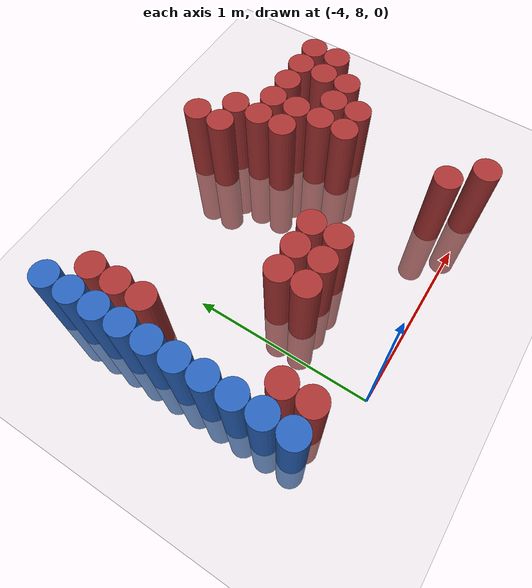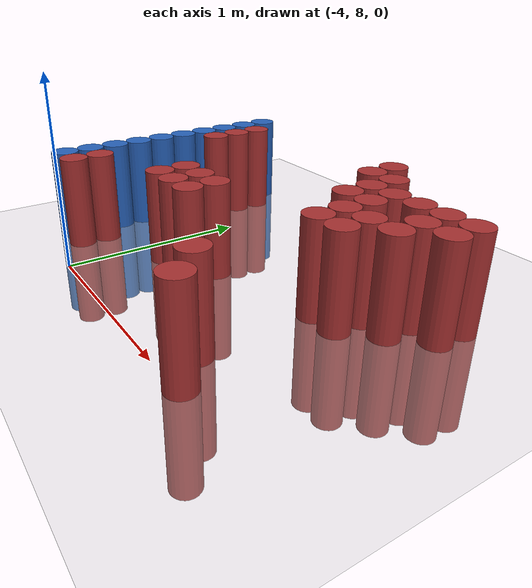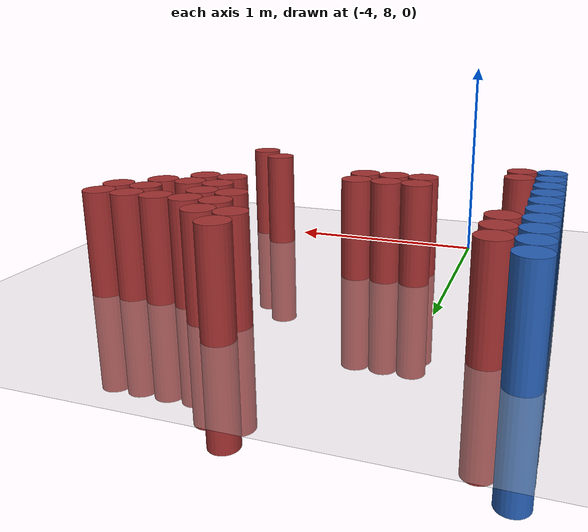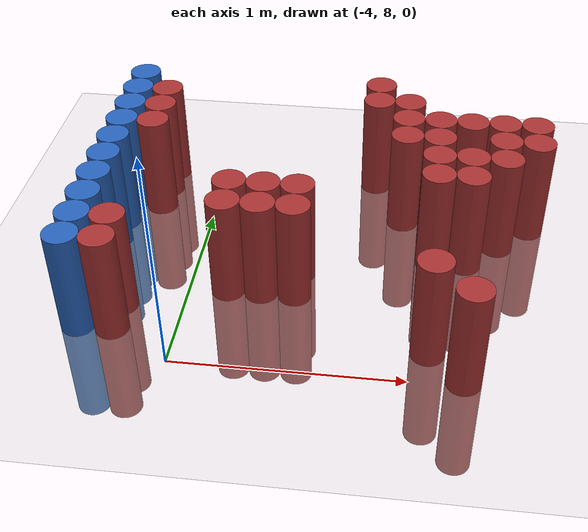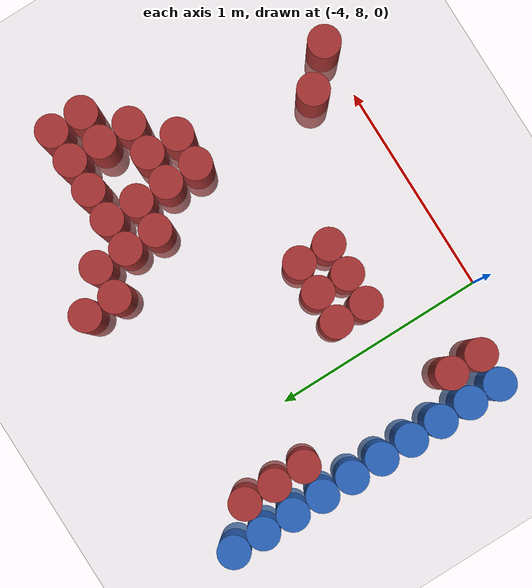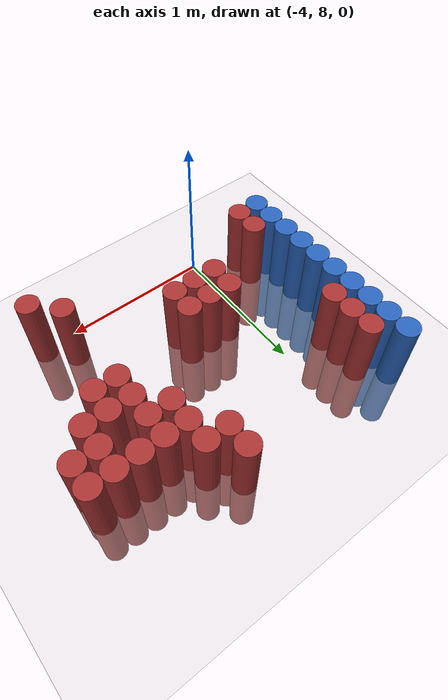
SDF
<sdf version="1.6">
 <world name="default">
  <model name="ground_plane">
   <static>1</static>
   <link name="link">
    <collision name="collision">
     <geometry><plane><normal>0 0 1</normal><size>100 100</size></plane></geometry>
     <surface><friction><ode><mu>100</mu><mu2>50</mu2></ode></friction></surface>
    </collision>
    <visual name="visual">
     <cast_shadows>0</cast_shadows>
     <geometry><plane><normal>0 0 1</normal><size>100 100</size></plane></geometry>
     <material>
      <script><uri>file://media/materials/scripts/gazebo.material</uri><name>Gazebo/Grey</name></script>
     </material>
    </visual>
   </link>
  </model>
  <model name="unit_cylinder_116">
   <static>1</static>
   <pose>-4.425000 8.175000 0.000000 0.000000 0.000000 0.000000</pose>
   <link name="link">
    <inertial>
     <mass>1</mass>
     <inertia><ixx>0.145833</ixx><ixy>0</ixy><ixz>0</ixz><iyy>0.145833</iyy><iyz>0</iyz><izz>0.125</izz></inertia>
    </inertial>
    <collision name="collision">
     <geometry><cylinder><radius>0.075000</radius><length>1</length></cylinder></geometry>
    </collision>
    <visual name="visual">
     <geometry><cylinder><radius>0.075000</radius><length>1</length></cylinder></geometry>
     <material>
      <ambient>0.152000 0.379000 0.720000 1</ambient>
      <diffuse>0.152000 0.379000 0.720000 1</diffuse>
     </material>
     <material>
      <script><name>Gazebo/Grey</name><uri>file://media/materials/scripts/gazebo.material</uri></script>
     </material>
    </visual>
    <sensor name="sensor_contact" type="contact"><contact><collision>collision</collision></contact></sensor>
   </link>
   <plugin filename="gz-sim-touchplugin-system" name="gz::sim::systems::TouchPlugin">
    <target>robot</target>
    <namespace>robot</namespace>
    <time>0.001</time>
    <enabled>true</enabled>
   </plugin>
  </model>
  <model name="unit_cylinder_117">
   <static>1</static>
   <pose>-4.425000 8.325000 0.000000 0.000000 0.000000 0.000000</pose>
   <link name="link">
    <inertial>
     <mass>1</mass>
     <inertia><ixx>0.145833</ixx><ixy>0</ixy><ixz>0</ixz><iyy>0.145833</iyy><iyz>0</iyz><izz>0.125</izz></inertia>
    </inertial>
    <collision name="collision">
     <geometry><cylinder><radius>0.075000</radius><length>1</length></cylinder></geometry>
    </collision>
    <visual name="visual">
     <geometry><cylinder><radius>0.075000</radius><length>1</length></cylinder></geometry>
     <material>
      <ambient>0.152000 0.379000 0.720000 1</ambient>
      <diffuse>0.152000 0.379000 0.720000 1</diffuse>
     </material>
     <material>
      <script><name>Gazebo/Grey</name><uri>file://media/materials/scripts/gazebo.material</uri></script>
     </material>
    </visual>
    <sensor name="sensor_contact" type="contact"><contact><collision>collision</collision></contact></sensor>
   </link>
   <plugin filename="gz-sim-touchplugin-system" name="gz::sim::systems::TouchPlugin">
    <target>robot</target>
    <namespace>robot</namespace>
    <time>0.001</time>
    <enabled>true</enabled>
   </plugin>
  </model>
  <model name="unit_cylinder_118">
   <static>1</static>
   <pose>-4.425000 8.475000 0.000000 0.000000 0.000000 0.000000</pose>
   <link name="link">
    <inertial>
     <mass>1</mass>
     <inertia><ixx>0.145833</ixx><ixy>0</ixy><ixz>0</ixz><iyy>0.145833</iyy><iyz>0</iyz><izz>0.125</izz></inertia>
    </inertial>
    <collision name="collision">
     <geometry><cylinder><radius>0.075000</radius><length>1</length></cylinder></geometry>
    </collision>
    <visual name="visual">
     <geometry><cylinder><radius>0.075000</radius><length>1</length></cylinder></geometry>
     <material>
      <ambient>0.152000 0.379000 0.720000 1</ambient>
      <diffuse>0.152000 0.379000 0.720000 1</diffuse>
     </material>
     <material>
      <script><name>Gazebo/Grey</name><uri>file://media/materials/scripts/gazebo.material</uri></script>
     </material>
    </visual>
    <sensor name="sensor_contact" type="contact"><contact><collision>collision</collision></contact></sensor>
   </link>
   <plugin filename="gz-sim-touchplugin-system" name="gz::sim::systems::TouchPlugin">
    <target>robot</target>
    <namespace>robot</namespace>
    <time>0.001</time>
    <enabled>true</enabled>
   </plugin>
  </model>
  <model name="unit_cylinder_119">
   <static>1</static>
   <pose>-4.425000 8.625000 0.000000 0.000000 0.000000 0.000000</pose>
   <link name="link">
    <inertial>
     <mass>1</mass>
     <inertia><ixx>0.145833</ixx><ixy>0</ixy><ixz>0</ixz><iyy>0.145833</iyy><iyz>0</iyz><izz>0.125</izz></inertia>
    </inertial>
    <collision name="collision">
     <geometry><cylinder><radius>0.075000</radius><length>1</length></cylinder></geometry>
    </collision>
    <visual name="visual">
     <geometry><cylinder><radius>0.075000</radius><length>1</length></cylinder></geometry>
     <material>
      <ambient>0.152000 0.379000 0.720000 1</ambient>
      <diffuse>0.152000 0.379000 0.720000 1</diffuse>
     </material>
     <material>
      <script><name>Gazebo/Grey</name><uri>file://media/materials/scripts/gazebo.material</uri></script>
     </material>
    </visual>
    <sensor name="sensor_contact" type="contact"><contact><collision>collision</collision></contact></sensor>
   </link>
   <plugin filename="gz-sim-touchplugin-system" name="gz::sim::systems::TouchPlugin">
    <target>robot</target>
    <namespace>robot</namespace>
    <time>0.001</time>
    <enabled>true</enabled>
   </plugin>
  </model>
  <model name="unit_cylinder_120">
   <static>1</static>
   <pose>-4.425000 8.775000 0.000000 0.000000 0.000000 0.000000</pose>
   <link name="link">
    <inertial>
     <mass>1</mass>
     <inertia><ixx>0.145833</ixx><ixy>0</ixy><ixz>0</ixz><iyy>0.145833</iyy><iyz>0</iyz><izz>0.125</izz></inertia>
    </inertial>
    <collision name="collision">
     <geometry><cylinder><radius>0.075000</radius><length>1</length></cylinder></geometry>
    </collision>
    <visual name="visual">
     <geometry><cylinder><radius>0.075000</radius><length>1</length></cylinder></geometry>
     <material>
      <ambient>0.152000 0.379000 0.720000 1</ambient>
      <diffuse>0.152000 0.379000 0.720000 1</diffuse>
     </material>
     <material>
      <script><name>Gazebo/Grey</name><uri>file://media/materials/scripts/gazebo.material</uri></script>
     </material>
    </visual>
    <sensor name="sensor_contact" type="contact"><contact><collision>collision</collision></contact></sensor>
   </link>
   <plugin filename="gz-sim-touchplugin-system" name="gz::sim::systems::TouchPlugin">
    <target>robot</target>
    <namespace>robot</namespace>
    <time>0.001</time>
    <enabled>true</enabled>
   </plugin>
  </model>
  <model name="unit_cylinder_121">
   <static>1</static>
   <pose>-4.425000 8.925000 0.000000 0.000000 0.000000 0.000000</pose>
   <link name="link">
    <inertial>
     <mass>1</mass>
     <inertia><ixx>0.145833</ixx><ixy>0</ixy><ixz>0</ixz><iyy>0.145833</iyy><iyz>0</iyz><izz>0.125</izz></inertia>
    </inertial>
    <collision name="collision">
     <geometry><cylinder><radius>0.075000</radius><length>1</length></cylinder></geometry>
    </collision>
    <visual name="visual">
     <geometry><cylinder><radius>0.075000</radius><length>1</length></cylinder></geometry>
     <material>
      <ambient>0.152000 0.379000 0.720000 1</ambient>
      <diffuse>0.152000 0.379000 0.720000 1</diffuse>
     </material>
     <material>
      <script><name>Gazebo/Grey</name><uri>file://media/materials/scripts/gazebo.material</uri></script>
     </material>
    </visual>
    <sensor name="sensor_contact" type="contact"><contact><collision>collision</collision></contact></sensor>
   </link>
   <plugin filename="gz-sim-touchplugin-system" name="gz::sim::systems::TouchPlugin">
    <target>robot</target>
    <namespace>robot</namespace>
    <time>0.001</time>
    <enabled>true</enabled>
   </plugin>
  </model>
  <model name="unit_cylinder_122">
   <static>1</static>
   <pose>-4.425000 9.075000 0.000000 0.000000 0.000000 0.000000</pose>
   <link name="link">
    <inertial>
     <mass>1</mass>
     <inertia><ixx>0.145833</ixx><ixy>0</ixy><ixz>0</ixz><iyy>0.145833</iyy><iyz>0</iyz><izz>0.125</izz></inertia>
    </inertial>
    <collision name="collision">
     <geometry><cylinder><radius>0.075000</radius><length>1</length></cylinder></geometry>
    </collision>
    <visual name="visual">
     <geometry><cylinder><radius>0.075000</radius><length>1</length></cylinder></geometry>
     <material>
      <ambient>0.152000 0.379000 0.720000 1</ambient>
      <diffuse>0.152000 0.379000 0.720000 1</diffuse>
     </material>
     <material>
      <script><name>Gazebo/Grey</name><uri>file://media/materials/scripts/gazebo.material</uri></script>
     </material>
    </visual>
    <sensor name="sensor_contact" type="contact"><contact><collision>collision</collision></contact></sensor>
   </link>
   <plugin filename="gz-sim-touchplugin-system" name="gz::sim::systems::TouchPlugin">
    <target>robot</target>
    <namespace>robot</namespace>
    <time>0.001</time>
    <enabled>true</enabled>
   </plugin>
  </model>
  <model name="unit_cylinder_123">
   <static>1</static>
   <pose>-4.425000 9.225000 0.000000 0.000000 0.000000 0.000000</pose>
   <link name="link">
    <inertial>
     <mass>1</mass>
     <inertia><ixx>0.145833</ixx><ixy>0</ixy><ixz>0</ixz><iyy>0.145833</iyy><iyz>0</iyz><izz>0.125</izz></inertia>
    </inertial>
    <collision name="collision">
     <geometry><cylinder><radius>0.075000</radius><length>1</length></cylinder></geometry>
    </collision>
    <visual name="visual">
     <geometry><cylinder><radius>0.075000</radius><length>1</length></cylinder></geometry>
     <material>
      <ambient>0.152000 0.379000 0.720000 1</ambient>
      <diffuse>0.152000 0.379000 0.720000 1</diffuse>
     </material>
     <material>
      <script><name>Gazebo/Grey</name><uri>file://media/materials/scripts/gazebo.material</uri></script>
     </material>
    </visual>
    <sensor name="sensor_contact" type="contact"><contact><collision>collision</collision></contact></sensor>
   </link>
   <plugin filename="gz-sim-touchplugin-system" name="gz::sim::systems::TouchPlugin">
    <target>robot</target>
    <namespace>robot</namespace>
    <time>0.001</time>
    <enabled>true</enabled>
   </plugin>
  </model>
  <model name="unit_cylinder_124">
   <static>1</static>
   <pose>-4.425000 9.375000 0.000000 0.000000 0.000000 0.000000</pose>
   <link name="link">
    <inertial>
     <mass>1</mass>
     <inertia><ixx>0.145833</ixx><ixy>0</ixy><ixz>0</ixz><iyy>0.145833</iyy><iyz>0</iyz><izz>0.125</izz></inertia>
    </inertial>
    <collision name="collision">
     <geometry><cylinder><radius>0.075000</radius><length>1</length></cylinder></geometry>
    </collision>
    <visual name="visual">
     <geometry><cylinder><radius>0.075000</radius><length>1</length></cylinder></geometry>
     <material>
      <ambient>0.152000 0.379000 0.720000 1</ambient>
      <diffuse>0.152000 0.379000 0.720000 1</diffuse>
     </material>
     <material>
      <script><name>Gazebo/Grey</name><uri>file://media/materials/scripts/gazebo.material</uri></script>
     </material>
    </visual>
    <sensor name="sensor_contact" type="contact"><contact><collision>collision</collision></contact></sensor>
   </link>
   <plugin filename="gz-sim-touchplugin-system" name="gz::sim::systems::TouchPlugin">
    <target>robot</target>
    <namespace>robot</namespace>
    <time>0.001</time>
    <enabled>true</enabled>
   </plugin>
  </model>
  <model name="unit_cylinder_125">
   <static>1</static>
   <pose>-4.425000 9.525000 0.000000 0.000000 0.000000 0.000000</pose>
   <link name="link">
    <inertial>
     <mass>1</mass>
     <inertia><ixx>0.145833</ixx><ixy>0</ixy><ixz>0</ixz><iyy>0.145833</iyy><iyz>0</iyz><izz>0.125</izz></inertia>
    </inertial>
    <collision name="collision">
     <geometry><cylinder><radius>0.075000</radius><length>1</length></cylinder></geometry>
    </collision>
    <visual name="visual">
     <geometry><cylinder><radius>0.075000</radius><length>1</length></cylinder></geometry>
     <material>
      <ambient>0.152000 0.379000 0.720000 1</ambient>
      <diffuse>0.152000 0.379000 0.720000 1</diffuse>
     </material>
     <material>
      <script><name>Gazebo/Grey</name><uri>file://media/materials/scripts/gazebo.material</uri></script>
     </material>
    </visual>
    <sensor name="sensor_contact" type="contact"><contact><collision>collision</collision></contact></sensor>
   </link>
   <plugin filename="gz-sim-touchplugin-system" name="gz::sim::systems::TouchPlugin">
    <target>robot</target>
    <namespace>robot</namespace>
    <time>0.001</time>
    <enabled>true</enabled>
   </plugin>
  </model>
  <model name="unit_cylinder_133">
   <static>1</static>
   <pose>-4.275000 8.175000 0.000000 0.000000 0.000000 0.000000</pose>
   <link name="link">
    <inertial>
     <mass>1</mass>
     <inertia><ixx>0.145833</ixx><ixy>0</ixy><ixz>0</ixz><iyy>0.145833</iyy><iyz>0</iyz><izz>0.125</izz></inertia>
    </inertial>
    <collision name="collision">
     <geometry><cylinder><radius>0.075000</radius><length>1</length></cylinder></geometry>
    </collision>
    <visual name="visual">
     <geometry><cylinder><radius>0.075000</radius><length>1</length></cylinder></geometry>
     <material>
      <ambient>0.648000 0.192000 0.192000 1</ambient>
      <diffuse>0.648000 0.192000 0.192000 1</diffuse>
     </material>
     <material>
      <script><name>Gazebo/Grey</name><uri>file://media/materials/scripts/gazebo.material</uri></script>
     </material>
    </visual>
    <sensor name="sensor_contact" type="contact"><contact><collision>collision</collision></contact></sensor>
   </link>
   <plugin filename="gz-sim-touchplugin-system" name="gz::sim::systems::TouchPlugin">
    <target>robot</target>
    <namespace>robot</namespace>
    <time>0.001</time>
    <enabled>true</enabled>
   </plugin>
  </model>
  <model name="unit_cylinder_134">
   <static>1</static>
   <pose>-4.275000 8.325000 0.000000 0.000000 0.000000 0.000000</pose>
   <link name="link">
    <inertial>
     <mass>1</mass>
     <inertia><ixx>0.145833</ixx><ixy>0</ixy><ixz>0</ixz><iyy>0.145833</iyy><iyz>0</iyz><izz>0.125</izz></inertia>
    </inertial>
    <collision name="collision">
     <geometry><cylinder><radius>0.075000</radius><length>1</length></cylinder></geometry>
    </collision>
    <visual name="visual">
     <geometry><cylinder><radius>0.075000</radius><length>1</length></cylinder></geometry>
     <material>
      <ambient>0.648000 0.192000 0.192000 1</ambient>
      <diffuse>0.648000 0.192000 0.192000 1</diffuse>
     </material>
     <material>
      <script><name>Gazebo/Grey</name><uri>file://media/materials/scripts/gazebo.material</uri></script>
     </material>
    </visual>
    <sensor name="sensor_contact" type="contact"><contact><collision>collision</collision></contact></sensor>
   </link>
   <plugin filename="gz-sim-touchplugin-system" name="gz::sim::systems::TouchPlugin">
    <target>robot</target>
    <namespace>robot</namespace>
    <time>0.001</time>
    <enabled>true</enabled>
   </plugin>
  </model>
  <model name="unit_cylinder_135">
   <static>1</static>
   <pose>-4.275000 9.075000 0.000000 0.000000 0.000000 0.000000</pose>
   <link name="link">
    <inertial>
     <mass>1</mass>
     <inertia><ixx>0.145833</ixx><ixy>0</ixy><ixz>0</ixz><iyy>0.145833</iyy><iyz>0</iyz><izz>0.125</izz></inertia>
    </inertial>
    <collision name="collision">
     <geometry><cylinder><radius>0.075000</radius><length>1</length></cylinder></geometry>
    </collision>
    <visual name="visual">
     <geometry><cylinder><radius>0.075000</radius><length>1</length></cylinder></geometry>
     <material>
      <ambient>0.648000 0.192000 0.192000 1</ambient>
      <diffuse>0.648000 0.192000 0.192000 1</diffuse>
     </material>
     <material>
      <script><name>Gazebo/Grey</name><uri>file://media/materials/scripts/gazebo.material</uri></script>
     </material>
    </visual>
    <sensor name="sensor_contact" type="contact"><contact><collision>collision</collision></contact></sensor>
   </link>
   <plugin filename="gz-sim-touchplugin-system" name="gz::sim::systems::TouchPlugin">
    <target>robot</target>
    <namespace>robot</namespace>
    <time>0.001</time>
    <enabled>true</enabled>
   </plugin>
  </model>
  <model name="unit_cylinder_136">
   <static>1</static>
   <pose>-4.275000 9.225000 0.000000 0.000000 0.000000 0.000000</pose>
   <link name="link">
    <inertial>
     <mass>1</mass>
     <inertia><ixx>0.145833</ixx><ixy>0</ixy><ixz>0</ixz><iyy>0.145833</iyy><iyz>0</iyz><izz>0.125</izz></inertia>
    </inertial>
    <collision name="collision">
     <geometry><cylinder><radius>0.075000</radius><length>1</length></cylinder></geometry>
    </collision>
    <visual name="visual">
     <geometry><cylinder><radius>0.075000</radius><length>1</length></cylinder></geometry>
     <material>
      <ambient>0.648000 0.192000 0.192000 1</ambient>
      <diffuse>0.648000 0.192000 0.192000 1</diffuse>
     </material>
     <material>
      <script><name>Gazebo/Grey</name><uri>file://media/materials/scripts/gazebo.material</uri></script>
     </material>
    </visual>
    <sensor name="sensor_contact" type="contact"><contact><collision>collision</collision></contact></sensor>
   </link>
   <plugin filename="gz-sim-touchplugin-system" name="gz::sim::systems::TouchPlugin">
    <target>robot</target>
    <namespace>robot</namespace>
    <time>0.001</time>
    <enabled>true</enabled>
   </plugin>
  </model>
  <model name="unit_cylinder_137">
   <static>1</static>
   <pose>-4.275000 9.375000 0.000000 0.000000 0.000000 0.000000</pose>
   <link name="link">
    <inertial>
     <mass>1</mass>
     <inertia><ixx>0.145833</ixx><ixy>0</ixy><ixz>0</ixz><iyy>0.145833</iyy><iyz>0</iyz><izz>0.125</izz></inertia>
    </inertial>
    <collision name="collision">
     <geometry><cylinder><radius>0.075000</radius><length>1</length></cylinder></geometry>
    </collision>
    <visual name="visual">
     <geometry><cylinder><radius>0.075000</radius><length>1</length></cylinder></geometry>
     <material>
      <ambient>0.648000 0.192000 0.192000 1</ambient>
      <diffuse>0.648000 0.192000 0.192000 1</diffuse>
     </material>
     <material>
      <script><name>Gazebo/Grey</name><uri>file://media/materials/scripts/gazebo.material</uri></script>
     </material>
    </visual>
    <sensor name="sensor_contact" type="contact"><contact><collision>collision</collision></contact></sensor>
   </link>
   <plugin filename="gz-sim-touchplugin-system" name="gz::sim::systems::TouchPlugin">
    <target>robot</target>
    <namespace>robot</namespace>
    <time>0.001</time>
    <enabled>true</enabled>
   </plugin>
  </model>
  <model name="unit_cylinder_154">
   <static>1</static>
   <pose>-3.825000 8.475000 0.000000 0.000000 0.000000 0.000000</pose>
   <link name="link">
    <inertial>
     <mass>1</mass>
     <inertia><ixx>0.145833</ixx><ixy>0</ixy><ixz>0</ixz><iyy>0.145833</iyy><iyz>0</iyz><izz>0.125</izz></inertia>
    </inertial>
    <collision name="collision">
     <geometry><cylinder><radius>0.075000</radius><length>1</length></cylinder></geometry>
    </collision>
    <visual name="visual">
     <geometry><cylinder><radius>0.075000</radius><length>1</length></cylinder></geometry>
     <material>
      <ambient>0.648000 0.192000 0.192000 1</ambient>
      <diffuse>0.648000 0.192000 0.192000 1</diffuse>
     </material>
     <material>
      <script><name>Gazebo/Grey</name><uri>file://media/materials/scripts/gazebo.material</uri></script>
     </material>
    </visual>
    <sensor name="sensor_contact" type="contact"><contact><collision>collision</collision></contact></sensor>
   </link>
   <plugin filename="gz-sim-touchplugin-system" name="gz::sim::systems::TouchPlugin">
    <target>robot</target>
    <namespace>robot</namespace>
    <time>0.001</time>
    <enabled>true</enabled>
   </plugin>
  </model>
  <model name="unit_cylinder_155">
   <static>1</static>
   <pose>-3.825000 8.625000 0.000000 0.000000 0.000000 0.000000</pose>
   <link name="link">
    <inertial>
     <mass>1</mass>
     <inertia><ixx>0.145833</ixx><ixy>0</ixy><ixz>0</ixz><iyy>0.145833</iyy><iyz>0</iyz><izz>0.125</izz></inertia>
    </inertial>
    <collision name="collision">
     <geometry><cylinder><radius>0.075000</radius><length>1</length></cylinder></geometry>
    </collision>
    <visual name="visual">
     <geometry><cylinder><radius>0.075000</radius><length>1</length></cylinder></geometry>
     <material>
      <ambient>0.648000 0.192000 0.192000 1</ambient>
      <diffuse>0.648000 0.192000 0.192000 1</diffuse>
     </material>
     <material>
      <script><name>Gazebo/Grey</name><uri>file://media/materials/scripts/gazebo.material</uri></script>
     </material>
    </visual>
    <sensor name="sensor_contact" type="contact"><contact><collision>collision</collision></contact></sensor>
   </link>
   <plugin filename="gz-sim-touchplugin-system" name="gz::sim::systems::TouchPlugin">
    <target>robot</target>
    <namespace>robot</namespace>
    <time>0.001</time>
    <enabled>true</enabled>
   </plugin>
  </model>
  <model name="unit_cylinder_160">
   <static>1</static>
   <pose>-3.675000 8.475000 0.000000 0.000000 0.000000 0.000000</pose>
   <link name="link">
    <inertial>
     <mass>1</mass>
     <inertia><ixx>0.145833</ixx><ixy>0</ixy><ixz>0</ixz><iyy>0.145833</iyy><iyz>0</iyz><izz>0.125</izz></inertia>
    </inertial>
    <collision name="collision">
     <geometry><cylinder><radius>0.075000</radius><length>1</length></cylinder></geometry>
    </collision>
    <visual name="visual">
     <geometry><cylinder><radius>0.075000</radius><length>1</length></cylinder></geometry>
     <material>
      <ambient>0.648000 0.192000 0.192000 1</ambient>
      <diffuse>0.648000 0.192000 0.192000 1</diffuse>
     </material>
     <material>
      <script><name>Gazebo/Grey</name><uri>file://media/materials/scripts/gazebo.material</uri></script>
     </material>
    </visual>
    <sensor name="sensor_contact" type="contact"><contact><collision>collision</collision></contact></sensor>
   </link>
   <plugin filename="gz-sim-touchplugin-system" name="gz::sim::systems::TouchPlugin">
    <target>robot</target>
    <namespace>robot</namespace>
    <time>0.001</time>
    <enabled>true</enabled>
   </plugin>
  </model>
  <model name="unit_cylinder_161">
   <static>1</static>
   <pose>-3.675000 8.625000 0.000000 0.000000 0.000000 0.000000</pose>
   <link name="link">
    <inertial>
     <mass>1</mass>
     <inertia><ixx>0.145833</ixx><ixy>0</ixy><ixz>0</ixz><iyy>0.145833</iyy><iyz>0</iyz><izz>0.125</izz></inertia>
    </inertial>
    <collision name="collision">
     <geometry><cylinder><radius>0.075000</radius><length>1</length></cylinder></geometry>
    </collision>
    <visual name="visual">
     <geometry><cylinder><radius>0.075000</radius><length>1</length></cylinder></geometry>
     <material>
      <ambient>0.648000 0.192000 0.192000 1</ambient>
      <diffuse>0.648000 0.192000 0.192000 1</diffuse>
     </material>
     <material>
      <script><name>Gazebo/Grey</name><uri>file://media/materials/scripts/gazebo.material</uri></script>
     </material>
    </visual>
    <sensor name="sensor_contact" type="contact"><contact><collision>collision</collision></contact></sensor>
   </link>
   <plugin filename="gz-sim-touchplugin-system" name="gz::sim::systems::TouchPlugin">
    <target>robot</target>
    <namespace>robot</namespace>
    <time>0.001</time>
    <enabled>true</enabled>
   </plugin>
  </model>
  <model name="unit_cylinder_167">
   <static>1</static>
   <pose>-3.525000 8.475000 0.000000 0.000000 0.000000 0.000000</pose>
   <link name="link">
    <inertial>
     <mass>1</mass>
     <inertia><ixx>0.145833</ixx><ixy>0</ixy><ixz>0</ixz><iyy>0.145833</iyy><iyz>0</iyz><izz>0.125</izz></inertia>
    </inertial>
    <collision name="collision">
     <geometry><cylinder><radius>0.075000</radius><length>1</length></cylinder></geometry>
    </collision>
    <visual name="visual">
     <geometry><cylinder><radius>0.075000</radius><length>1</length></cylinder></geometry>
     <material>
      <ambient>0.648000 0.192000 0.192000 1</ambient>
      <diffuse>0.648000 0.192000 0.192000 1</diffuse>
     </material>
     <material>
      <script><name>Gazebo/Grey</name><uri>file://media/materials/scripts/gazebo.material</uri></script>
     </material>
    </visual>
    <sensor name="sensor_contact" type="contact"><contact><collision>collision</collision></contact></sensor>
   </link>
   <plugin filename="gz-sim-touchplugin-system" name="gz::sim::systems::TouchPlugin">
    <target>robot</target>
    <namespace>robot</namespace>
    <time>0.001</time>
    <enabled>true</enabled>
   </plugin>
  </model>
  <model name="unit_cylinder_168">
   <static>1</static>
   <pose>-3.525000 8.625000 0.000000 0.000000 0.000000 0.000000</pose>
   <link name="link">
    <inertial>
     <mass>1</mass>
     <inertia><ixx>0.145833</ixx><ixy>0</ixy><ixz>0</ixz><iyy>0.145833</iyy><iyz>0</iyz><izz>0.125</izz></inertia>
    </inertial>
    <collision name="collision">
     <geometry><cylinder><radius>0.075000</radius><length>1</length></cylinder></geometry>
    </collision>
    <visual name="visual">
     <geometry><cylinder><radius>0.075000</radius><length>1</length></cylinder></geometry>
     <material>
      <ambient>0.648000 0.192000 0.192000 1</ambient>
      <diffuse>0.648000 0.192000 0.192000 1</diffuse>
     </material>
     <material>
      <script><name>Gazebo/Grey</name><uri>file://media/materials/scripts/gazebo.material</uri></script>
     </material>
    </visual>
    <sensor name="sensor_contact" type="contact"><contact><collision>collision</collision></contact></sensor>
   </link>
   <plugin filename="gz-sim-touchplugin-system" name="gz::sim::systems::TouchPlugin">
    <target>robot</target>
    <namespace>robot</namespace>
    <time>0.001</time>
    <enabled>true</enabled>
   </plugin>
  </model>
  <model name="unit_cylinder_183">
   <static>1</static>
   <pose>-3.225000 9.375000 0.000000 0.000000 0.000000 0.000000</pose>
   <link name="link">
    <inertial>
     <mass>1</mass>
     <inertia><ixx>0.145833</ixx><ixy>0</ixy><ixz>0</ixz><iyy>0.145833</iyy><iyz>0</iyz><izz>0.125</izz></inertia>
    </inertial>
    <collision name="collision">
     <geometry><cylinder><radius>0.075000</radius><length>1</length></cylinder></geometry>
    </collision>
    <visual name="visual">
     <geometry><cylinder><radius>0.075000</radius><length>1</length></cylinder></geometry>
     <material>
      <ambient>0.648000 0.192000 0.192000 1</ambient>
      <diffuse>0.648000 0.192000 0.192000 1</diffuse>
     </material>
     <material>
      <script><name>Gazebo/Grey</name><uri>file://media/materials/scripts/gazebo.material</uri></script>
     </material>
    </visual>
    <sensor name="sensor_contact" type="contact"><contact><collision>collision</collision></contact></sensor>
   </link>
   <plugin filename="gz-sim-touchplugin-system" name="gz::sim::systems::TouchPlugin">
    <target>robot</target>
    <namespace>robot</namespace>
    <time>0.001</time>
    <enabled>true</enabled>
   </plugin>
  </model>
  <model name="unit_cylinder_184">
   <static>1</static>
   <pose>-3.225000 9.525000 0.000000 0.000000 0.000000 0.000000</pose>
   <link name="link">
    <inertial>
     <mass>1</mass>
     <inertia><ixx>0.145833</ixx><ixy>0</ixy><ixz>0</ixz><iyy>0.145833</iyy><iyz>0</iyz><izz>0.125</izz></inertia>
    </inertial>
    <collision name="collision">
     <geometry><cylinder><radius>0.075000</radius><length>1</length></cylinder></geometry>
    </collision>
    <visual name="visual">
     <geometry><cylinder><radius>0.075000</radius><length>1</length></cylinder></geometry>
     <material>
      <ambient>0.648000 0.192000 0.192000 1</ambient>
      <diffuse>0.648000 0.192000 0.192000 1</diffuse>
     </material>
     <material>
      <script><name>Gazebo/Grey</name><uri>file://media/materials/scripts/gazebo.material</uri></script>
     </material>
    </visual>
    <sensor name="sensor_contact" type="contact"><contact><collision>collision</collision></contact></sensor>
   </link>
   <plugin filename="gz-sim-touchplugin-system" name="gz::sim::systems::TouchPlugin">
    <target>robot</target>
    <namespace>robot</namespace>
    <time>0.001</time>
    <enabled>true</enabled>
   </plugin>
  </model>
  <model name="unit_cylinder_187">
   <static>1</static>
   <pose>-3.075000 9.075000 0.000000 0.000000 0.000000 0.000000</pose>
   <link name="link">
    <inertial>
     <mass>1</mass>
     <inertia><ixx>0.145833</ixx><ixy>0</ixy><ixz>0</ixz><iyy>0.145833</iyy><iyz>0</iyz><izz>0.125</izz></inertia>
    </inertial>
    <collision name="collision">
     <geometry><cylinder><radius>0.075000</radius><length>1</length></cylinder></geometry>
    </collision>
    <visual name="visual">
     <geometry><cylinder><radius>0.075000</radius><length>1</length></cylinder></geometry>
     <material>
      <ambient>0.648000 0.192000 0.192000 1</ambient>
      <diffuse>0.648000 0.192000 0.192000 1</diffuse>
     </material>
     <material>
      <script><name>Gazebo/Grey</name><uri>file://media/materials/scripts/gazebo.material</uri></script>
     </material>
    </visual>
    <sensor name="sensor_contact" type="contact"><contact><collision>collision</collision></contact></sensor>
   </link>
   <plugin filename="gz-sim-touchplugin-system" name="gz::sim::systems::TouchPlugin">
    <target>robot</target>
    <namespace>robot</namespace>
    <time>0.001</time>
    <enabled>true</enabled>
   </plugin>
  </model>
  <model name="unit_cylinder_188">
   <static>1</static>
   <pose>-3.075000 9.225000 0.000000 0.000000 0.000000 0.000000</pose>
   <link name="link">
    <inertial>
     <mass>1</mass>
     <inertia><ixx>0.145833</ixx><ixy>0</ixy><ixz>0</ixz><iyy>0.145833</iyy><iyz>0</iyz><izz>0.125</izz></inertia>
    </inertial>
    <collision name="collision">
     <geometry><cylinder><radius>0.075000</radius><length>1</length></cylinder></geometry>
    </collision>
    <visual name="visual">
     <geometry><cylinder><radius>0.075000</radius><length>1</length></cylinder></geometry>
     <material>
      <ambient>0.648000 0.192000 0.192000 1</ambient>
      <diffuse>0.648000 0.192000 0.192000 1</diffuse>
     </material>
     <material>
      <script><name>Gazebo/Grey</name><uri>file://media/materials/scripts/gazebo.material</uri></script>
     </material>
    </visual>
    <sensor name="sensor_contact" type="contact"><contact><collision>collision</collision></contact></sensor>
   </link>
   <plugin filename="gz-sim-touchplugin-system" name="gz::sim::systems::TouchPlugin">
    <target>robot</target>
    <namespace>robot</namespace>
    <time>0.001</time>
    <enabled>true</enabled>
   </plugin>
  </model>
  <model name="unit_cylinder_189">
   <static>1</static>
   <pose>-3.075000 9.375000 0.000000 0.000000 0.000000 0.000000</pose>
   <link name="link">
    <inertial>
     <mass>1</mass>
     <inertia><ixx>0.145833</ixx><ixy>0</ixy><ixz>0</ixz><iyy>0.145833</iyy><iyz>0</iyz><izz>0.125</izz></inertia>
    </inertial>
    <collision name="collision">
     <geometry><cylinder><radius>0.075000</radius><length>1</length></cylinder></geometry>
    </collision>
    <visual name="visual">
     <geometry><cylinder><radius>0.075000</radius><length>1</length></cylinder></geometry>
     <material>
      <ambient>0.648000 0.192000 0.192000 1</ambient>
      <diffuse>0.648000 0.192000 0.192000 1</diffuse>
     </material>
     <material>
      <script><name>Gazebo/Grey</name><uri>file://media/materials/scripts/gazebo.material</uri></script>
     </material>
    </visual>
    <sensor name="sensor_contact" type="contact"><contact><collision>collision</collision></contact></sensor>
   </link>
   <plugin filename="gz-sim-touchplugin-system" name="gz::sim::systems::TouchPlugin">
    <target>robot</target>
    <namespace>robot</namespace>
    <time>0.001</time>
    <enabled>true</enabled>
   </plugin>
  </model>
  <model name="unit_cylinder_192">
   <static>1</static>
   <pose>-2.925000 8.175000 0.000000 0.000000 0.000000 0.000000</pose>
   <link name="link">
    <inertial>
     <mass>1</mass>
     <inertia><ixx>0.145833</ixx><ixy>0</ixy><ixz>0</ixz><iyy>0.145833</iyy><iyz>0</iyz><izz>0.125</izz></inertia>
    </inertial>
    <collision name="collision">
     <geometry><cylinder><radius>0.075000</radius><length>1</length></cylinder></geometry>
    </collision>
    <visual name="visual">
     <geometry><cylinder><radius>0.075000</radius><length>1</length></cylinder></geometry>
     <material>
      <ambient>0.648000 0.192000 0.192000 1</ambient>
      <diffuse>0.648000 0.192000 0.192000 1</diffuse>
     </material>
     <material>
      <script><name>Gazebo/Grey</name><uri>file://media/materials/scripts/gazebo.material</uri></script>
     </material>
    </visual>
    <sensor name="sensor_contact" type="contact"><contact><collision>collision</collision></contact></sensor>
   </link>
   <plugin filename="gz-sim-touchplugin-system" name="gz::sim::systems::TouchPlugin">
    <target>robot</target>
    <namespace>robot</namespace>
    <time>0.001</time>
    <enabled>true</enabled>
   </plugin>
  </model>
  <model name="unit_cylinder_193">
   <static>1</static>
   <pose>-2.925000 8.775000 0.000000 0.000000 0.000000 0.000000</pose>
   <link name="link">
    <inertial>
     <mass>1</mass>
     <inertia><ixx>0.145833</ixx><ixy>0</ixy><ixz>0</ixz><iyy>0.145833</iyy><iyz>0</iyz><izz>0.125</izz></inertia>
    </inertial>
    <collision name="collision">
     <geometry><cylinder><radius>0.075000</radius><length>1</length></cylinder></geometry>
    </collision>
    <visual name="visual">
     <geometry><cylinder><radius>0.075000</radius><length>1</length></cylinder></geometry>
     <material>
      <ambient>0.648000 0.192000 0.192000 1</ambient>
      <diffuse>0.648000 0.192000 0.192000 1</diffuse>
     </material>
     <material>
      <script><name>Gazebo/Grey</name><uri>file://media/materials/scripts/gazebo.material</uri></script>
     </material>
    </visual>
    <sensor name="sensor_contact" type="contact"><contact><collision>collision</collision></contact></sensor>
   </link>
   <plugin filename="gz-sim-touchplugin-system" name="gz::sim::systems::TouchPlugin">
    <target>robot</target>
    <namespace>robot</namespace>
    <time>0.001</time>
    <enabled>true</enabled>
   </plugin>
  </model>
  <model name="unit_cylinder_194">
   <static>1</static>
   <pose>-2.925000 8.925000 0.000000 0.000000 0.000000 0.000000</pose>
   <link name="link">
    <inertial>
     <mass>1</mass>
     <inertia><ixx>0.145833</ixx><ixy>0</ixy><ixz>0</ixz><iyy>0.145833</iyy><iyz>0</iyz><izz>0.125</izz></inertia>
    </inertial>
    <collision name="collision">
     <geometry><cylinder><radius>0.075000</radius><length>1</length></cylinder></geometry>
    </collision>
    <visual name="visual">
     <geometry><cylinder><radius>0.075000</radius><length>1</length></cylinder></geometry>
     <material>
      <ambient>0.648000 0.192000 0.192000 1</ambient>
      <diffuse>0.648000 0.192000 0.192000 1</diffuse>
     </material>
     <material>
      <script><name>Gazebo/Grey</name><uri>file://media/materials/scripts/gazebo.material</uri></script>
     </material>
    </visual>
    <sensor name="sensor_contact" type="contact"><contact><collision>collision</collision></contact></sensor>
   </link>
   <plugin filename="gz-sim-touchplugin-system" name="gz::sim::systems::TouchPlugin">
    <target>robot</target>
    <namespace>robot</namespace>
    <time>0.001</time>
    <enabled>true</enabled>
   </plugin>
  </model>
  <model name="unit_cylinder_195">
   <static>1</static>
   <pose>-2.925000 9.075000 0.000000 0.000000 0.000000 0.000000</pose>
   <link name="link">
    <inertial>
     <mass>1</mass>
     <inertia><ixx>0.145833</ixx><ixy>0</ixy><ixz>0</ixz><iyy>0.145833</iyy><iyz>0</iyz><izz>0.125</izz></inertia>
    </inertial>
    <collision name="collision">
     <geometry><cylinder><radius>0.075000</radius><length>1</length></cylinder></geometry>
    </collision>
    <visual name="visual">
     <geometry><cylinder><radius>0.075000</radius><length>1</length></cylinder></geometry>
     <material>
      <ambient>0.648000 0.192000 0.192000 1</ambient>
      <diffuse>0.648000 0.192000 0.192000 1</diffuse>
     </material>
     <material>
      <script><name>Gazebo/Grey</name><uri>file://media/materials/scripts/gazebo.material</uri></script>
     </material>
    </visual>
    <sensor name="sensor_contact" type="contact"><contact><collision>collision</collision></contact></sensor>
   </link>
   <plugin filename="gz-sim-touchplugin-system" name="gz::sim::systems::TouchPlugin">
    <target>robot</target>
    <namespace>robot</namespace>
    <time>0.001</time>
    <enabled>true</enabled>
   </plugin>
  </model>
  <model name="unit_cylinder_196">
   <static>1</static>
   <pose>-2.925000 9.225000 0.000000 0.000000 0.000000 0.000000</pose>
   <link name="link">
    <inertial>
     <mass>1</mass>
     <inertia><ixx>0.145833</ixx><ixy>0</ixy><ixz>0</ixz><iyy>0.145833</iyy><iyz>0</iyz><izz>0.125</izz></inertia>
    </inertial>
    <collision name="collision">
     <geometry><cylinder><radius>0.075000</radius><length>1</length></cylinder></geometry>
    </collision>
    <visual name="visual">
     <geometry><cylinder><radius>0.075000</radius><length>1</length></cylinder></geometry>
     <material>
      <ambient>0.648000 0.192000 0.192000 1</ambient>
      <diffuse>0.648000 0.192000 0.192000 1</diffuse>
     </material>
     <material>
      <script><name>Gazebo/Grey</name><uri>file://media/materials/scripts/gazebo.material</uri></script>
     </material>
    </visual>
    <sensor name="sensor_contact" type="contact"><contact><collision>collision</collision></contact></sensor>
   </link>
   <plugin filename="gz-sim-touchplugin-system" name="gz::sim::systems::TouchPlugin">
    <target>robot</target>
    <namespace>robot</namespace>
    <time>0.001</time>
    <enabled>true</enabled>
   </plugin>
  </model>
  <model name="unit_cylinder_197">
   <static>1</static>
   <pose>-2.775000 8.025000 0.000000 0.000000 0.000000 0.000000</pose>
   <link name="link">
    <inertial>
     <mass>1</mass>
     <inertia><ixx>0.145833</ixx><ixy>0</ixy><ixz>0</ixz><iyy>0.145833</iyy><iyz>0</iyz><izz>0.125</izz></inertia>
    </inertial>
    <collision name="collision">
     <geometry><cylinder><radius>0.075000</radius><length>1</length></cylinder></geometry>
    </collision>
    <visual name="visual">
     <geometry><cylinder><radius>0.075000</radius><length>1</length></cylinder></geometry>
     <material>
      <ambient>0.648000 0.192000 0.192000 1</ambient>
      <diffuse>0.648000 0.192000 0.192000 1</diffuse>
     </material>
     <material>
      <script><name>Gazebo/Grey</name><uri>file://media/materials/scripts/gazebo.material</uri></script>
     </material>
    </visual>
    <sensor name="sensor_contact" type="contact"><contact><collision>collision</collision></contact></sensor>
   </link>
   <plugin filename="gz-sim-touchplugin-system" name="gz::sim::systems::TouchPlugin">
    <target>robot</target>
    <namespace>robot</namespace>
    <time>0.001</time>
    <enabled>true</enabled>
   </plugin>
  </model>
  <model name="unit_cylinder_198">
   <static>1</static>
   <pose>-2.775000 8.775000 0.000000 0.000000 0.000000 0.000000</pose>
   <link name="link">
    <inertial>
     <mass>1</mass>
     <inertia><ixx>0.145833</ixx><ixy>0</ixy><ixz>0</ixz><iyy>0.145833</iyy><iyz>0</iyz><izz>0.125</izz></inertia>
    </inertial>
    <collision name="collision">
     <geometry><cylinder><radius>0.075000</radius><length>1</length></cylinder></geometry>
    </collision>
    <visual name="visual">
     <geometry><cylinder><radius>0.075000</radius><length>1</length></cylinder></geometry>
     <material>
      <ambient>0.648000 0.192000 0.192000 1</ambient>
      <diffuse>0.648000 0.192000 0.192000 1</diffuse>
     </material>
     <material>
      <script><name>Gazebo/Grey</name><uri>file://media/materials/scripts/gazebo.material</uri></script>
     </material>
    </visual>
    <sensor name="sensor_contact" type="contact"><contact><collision>collision</collision></contact></sensor>
   </link>
   <plugin filename="gz-sim-touchplugin-system" name="gz::sim::systems::TouchPlugin">
    <target>robot</target>
    <namespace>robot</namespace>
    <time>0.001</time>
    <enabled>true</enabled>
   </plugin>
  </model>
  <model name="unit_cylinder_199">
   <static>1</static>
   <pose>-2.775000 8.925000 0.000000 0.000000 0.000000 0.000000</pose>
   <link name="link">
    <inertial>
     <mass>1</mass>
     <inertia><ixx>0.145833</ixx><ixy>0</ixy><ixz>0</ixz><iyy>0.145833</iyy><iyz>0</iyz><izz>0.125</izz></inertia>
    </inertial>
    <collision name="collision">
     <geometry><cylinder><radius>0.075000</radius><length>1</length></cylinder></geometry>
    </collision>
    <visual name="visual">
     <geometry><cylinder><radius>0.075000</radius><length>1</length></cylinder></geometry>
     <material>
      <ambient>0.648000 0.192000 0.192000 1</ambient>
      <diffuse>0.648000 0.192000 0.192000 1</diffuse>
     </material>
     <material>
      <script><name>Gazebo/Grey</name><uri>file://media/materials/scripts/gazebo.material</uri></script>
     </material>
    </visual>
    <sensor name="sensor_contact" type="contact"><contact><collision>collision</collision></contact></sensor>
   </link>
   <plugin filename="gz-sim-touchplugin-system" name="gz::sim::systems::TouchPlugin">
    <target>robot</target>
    <namespace>robot</namespace>
    <time>0.001</time>
    <enabled>true</enabled>
   </plugin>
  </model>
  <model name="unit_cylinder_200">
   <static>1</static>
   <pose>-2.775000 9.225000 0.000000 0.000000 0.000000 0.000000</pose>
   <link name="link">
    <inertial>
     <mass>1</mass>
     <inertia><ixx>0.145833</ixx><ixy>0</ixy><ixz>0</ixz><iyy>0.145833</iyy><iyz>0</iyz><izz>0.125</izz></inertia>
    </inertial>
    <collision name="collision">
     <geometry><cylinder><radius>0.075000</radius><length>1</length></cylinder></geometry>
    </collision>
    <visual name="visual">
     <geometry><cylinder><radius>0.075000</radius><length>1</length></cylinder></geometry>
     <material>
      <ambient>0.648000 0.192000 0.192000 1</ambient>
      <diffuse>0.648000 0.192000 0.192000 1</diffuse>
     </material>
     <material>
      <script><name>Gazebo/Grey</name><uri>file://media/materials/scripts/gazebo.material</uri></script>
     </material>
    </visual>
    <sensor name="sensor_contact" type="contact"><contact><collision>collision</collision></contact></sensor>
   </link>
   <plugin filename="gz-sim-touchplugin-system" name="gz::sim::systems::TouchPlugin">
    <target>robot</target>
    <namespace>robot</namespace>
    <time>0.001</time>
    <enabled>true</enabled>
   </plugin>
  </model>
  <model name="unit_cylinder_201">
   <static>1</static>
   <pose>-2.625000 8.925000 0.000000 0.000000 0.000000 0.000000</pose>
   <link name="link">
    <inertial>
     <mass>1</mass>
     <inertia><ixx>0.145833</ixx><ixy>0</ixy><ixz>0</ixz><iyy>0.145833</iyy><iyz>0</iyz><izz>0.125</izz></inertia>
    </inertial>
    <collision name="collision">
     <geometry><cylinder><radius>0.075000</radius><length>1</length></cylinder></geometry>
    </collision>
    <visual name="visual">
     <geometry><cylinder><radius>0.075000</radius><length>1</length></cylinder></geometry>
     <material>
      <ambient>0.648000 0.192000 0.192000 1</ambient>
      <diffuse>0.648000 0.192000 0.192000 1</diffuse>
     </material>
     <material>
      <script><name>Gazebo/Grey</name><uri>file://media/materials/scripts/gazebo.material</uri></script>
     </material>
    </visual>
    <sensor name="sensor_contact" type="contact"><contact><collision>collision</collision></contact></sensor>
   </link>
   <plugin filename="gz-sim-touchplugin-system" name="gz::sim::systems::TouchPlugin">
    <target>robot</target>
    <namespace>robot</namespace>
    <time>0.001</time>
    <enabled>true</enabled>
   </plugin>
  </model>
  <model name="unit_cylinder_202">
   <static>1</static>
   <pose>-2.625000 9.075000 0.000000 0.000000 0.000000 0.000000</pose>
   <link name="link">
    <inertial>
     <mass>1</mass>
     <inertia><ixx>0.145833</ixx><ixy>0</ixy><ixz>0</ixz><iyy>0.145833</iyy><iyz>0</iyz><izz>0.125</izz></inertia>
    </inertial>
    <collision name="collision">
     <geometry><cylinder><radius>0.075000</radius><length>1</length></cylinder></geometry>
    </collision>
    <visual name="visual">
     <geometry><cylinder><radius>0.075000</radius><length>1</length></cylinder></geometry>
     <material>
      <ambient>0.648000 0.192000 0.192000 1</ambient>
      <diffuse>0.648000 0.192000 0.192000 1</diffuse>
     </material>
     <material>
      <script><name>Gazebo/Grey</name><uri>file://media/materials/scripts/gazebo.material</uri></script>
     </material>
    </visual>
    <sensor name="sensor_contact" type="contact"><contact><collision>collision</collision></contact></sensor>
   </link>
   <plugin filename="gz-sim-touchplugin-system" name="gz::sim::systems::TouchPlugin">
    <target>robot</target>
    <namespace>robot</namespace>
    <time>0.001</time>
    <enabled>true</enabled>
   </plugin>
  </model>
  <model name="unit_cylinder_203">
   <static>1</static>
   <pose>-2.625000 9.225000 0.000000 0.000000 0.000000 0.000000</pose>
   <link name="link">
    <inertial>
     <mass>1</mass>
     <inertia><ixx>0.145833</ixx><ixy>0</ixy><ixz>0</ixz><iyy>0.145833</iyy><iyz>0</iyz><izz>0.125</izz></inertia>
    </inertial>
    <collision name="collision">
     <geometry><cylinder><radius>0.075000</radius><length>1</length></cylinder></geometry>
    </collision>
    <visual name="visual">
     <geometry><cylinder><radius>0.075000</radius><length>1</length></cylinder></geometry>
     <material>
      <ambient>0.648000 0.192000 0.192000 1</ambient>
      <diffuse>0.648000 0.192000 0.192000 1</diffuse>
     </material>
     <material>
      <script><name>Gazebo/Grey</name><uri>file://media/materials/scripts/gazebo.material</uri></script>
     </material>
    </visual>
    <sensor name="sensor_contact" type="contact"><contact><collision>collision</collision></contact></sensor>
   </link>
   <plugin filename="gz-sim-touchplugin-system" name="gz::sim::systems::TouchPlugin">
    <target>robot</target>
    <namespace>robot</namespace>
    <time>0.001</time>
    <enabled>true</enabled>
   </plugin>
  </model>
  <model name="unit_cylinder_204">
   <static>1</static>
   <pose>-2.475000 9.075000 0.000000 0.000000 0.000000 0.000000</pose>
   <link name="link">
    <inertial>
     <mass>1</mass>
     <inertia><ixx>0.145833</ixx><ixy>0</ixy><ixz>0</ixz><iyy>0.145833</iyy><iyz>0</iyz><izz>0.125</izz></inertia>
    </inertial>
    <collision name="collision">
     <geometry><cylinder><radius>0.075000</radius><length>1</length></cylinder></geometry>
    </collision>
    <visual name="visual">
     <geometry><cylinder><radius>0.075000</radius><length>1</length></cylinder></geometry>
     <material>
      <ambient>0.648000 0.192000 0.192000 1</ambient>
      <diffuse>0.648000 0.192000 0.192000 1</diffuse>
     </material>
     <material>
      <script><name>Gazebo/Grey</name><uri>file://media/materials/scripts/gazebo.material</uri></script>
     </material>
    </visual>
    <sensor name="sensor_contact" type="contact"><contact><collision>collision</collision></contact></sensor>
   </link>
   <plugin filename="gz-sim-touchplugin-system" name="gz::sim::systems::TouchPlugin">
    <target>robot</target>
    <namespace>robot</namespace>
    <time>0.001</time>
    <enabled>true</enabled>
   </plugin>
  </model>
  <model name="unit_cylinder_205">
   <static>1</static>
   <pose>-2.475000 9.225000 0.000000 0.000000 0.000000 0.000000</pose>
   <link name="link">
    <inertial>
     <mass>1</mass>
     <inertia><ixx>0.145833</ixx><ixy>0</ixy><ixz>0</ixz><iyy>0.145833</iyy><iyz>0</iyz><izz>0.125</izz></inertia>
    </inertial>
    <collision name="collision">
     <geometry><cylinder><radius>0.075000</radius><length>1</length></cylinder></geometry>
    </collision>
    <visual name="visual">
     <geometry><cylinder><radius>0.075000</radius><length>1</length></cylinder></geometry>
     <material>
      <ambient>0.648000 0.192000 0.192000 1</ambient>
      <diffuse>0.648000 0.192000 0.192000 1</diffuse>
     </material>
     <material>
      <script><name>Gazebo/Grey</name><uri>file://media/materials/scripts/gazebo.material</uri></script>
     </material>
    </visual>
    <sensor name="sensor_contact" type="contact"><contact><collision>collision</collision></contact></sensor>
   </link>
   <plugin filename="gz-sim-touchplugin-system" name="gz::sim::systems::TouchPlugin">
    <target>robot</target>
    <namespace>robot</namespace>
    <time>0.001</time>
    <enabled>true</enabled>
   </plugin>
  </model>
 </world>
</sdf>
